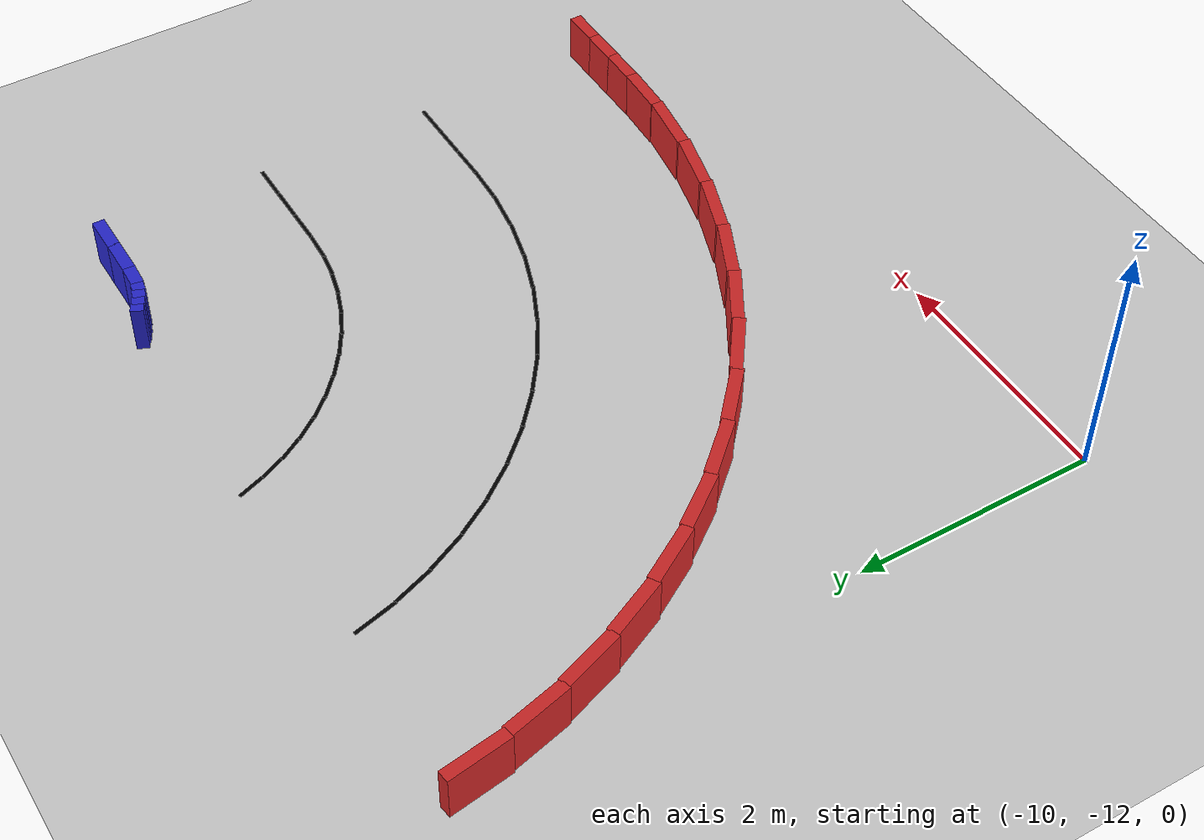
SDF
<sdf version="1.6">
 <world name="3lane_track">
  <include><uri>model://ground_plane</uri></include>
  <include><uri>model://sun</uri></include>
  <model name="iw_31">
   <static>true</static>
   <pose>-5.4211 -6.6325 0.200 0 0 -0.4418</pose>
   <link name="l">
    <collision name="c"><geometry><box><size>0.0847 0.1 0.4</size></box></geometry></collision>
    <visual name="v">
     <geometry><box><size>0.0847 0.1 0.4</size></box></geometry>
     <material><ambient>0.15 0.15 0.8 1</ambient><diffuse>0.15 0.15 0.8 1</diffuse></material>
    </visual>
   </link>
  </model>
  <model name="iw_32">
   <static>true</static>
   <pose>-5.3571 -6.6707 0.200 0 0 -0.3436</pose>
   <link name="l">
    <collision name="c"><geometry><box><size>0.0847 0.1 0.4</size></box></geometry></collision>
    <visual name="v">
     <geometry><box><size>0.0847 0.1 0.4</size></box></geometry>
     <material><ambient>0.15 0.15 0.8 1</ambient><diffuse>0.15 0.15 0.8 1</diffuse></material>
    </visual>
   </link>
  </model>
  <model name="iw_33">
   <static>true</static>
   <pose>-5.2896 -6.7025 0.200 0 0 -0.2454</pose>
   <link name="l">
    <collision name="c"><geometry><box><size>0.0847 0.1 0.4</size></box></geometry></collision>
    <visual name="v">
     <geometry><box><size>0.0847 0.1 0.4</size></box></geometry>
     <material><ambient>0.15 0.15 0.8 1</ambient><diffuse>0.15 0.15 0.8 1</diffuse></material>
    </visual>
   </link>
  </model>
  <model name="iw_34">
   <static>true</static>
   <pose>-5.2194 -6.7275 0.200 0 0 -0.1473</pose>
   <link name="l">
    <collision name="c"><geometry><box><size>0.0847 0.1 0.4</size></box></geometry></collision>
    <visual name="v">
     <geometry><box><size>0.0847 0.1 0.4</size></box></geometry>
     <material><ambient>0.15 0.15 0.8 1</ambient><diffuse>0.15 0.15 0.8 1</diffuse></material>
    </visual>
   </link>
  </model>
  <model name="iw_35">
   <static>true</static>
   <pose>-5.0918 -6.7441 0.200 0 0 -0.0491</pose>
   <link name="l">
    <collision name="c"><geometry><box><size>0.1940 0.1 0.4</size></box></geometry></collision>
    <visual name="v">
     <geometry><box><size>0.1940 0.1 0.4</size></box></geometry>
     <material><ambient>0.15 0.15 0.8 1</ambient><diffuse>0.15 0.15 0.8 1</diffuse></material>
    </visual>
   </link>
  </model>
  <model name="iw_36">
   <static>true</static>
   <pose>-4.8500 -6.7500 0.200 0 0 0.0000</pose>
   <link name="l">
    <collision name="c"><geometry><box><size>0.3100 0.1 0.4</size></box></geometry></collision>
    <visual name="v">
     <geometry><box><size>0.3100 0.1 0.4</size></box></geometry>
     <material><ambient>0.15 0.15 0.8 1</ambient><diffuse>0.15 0.15 0.8 1</diffuse></material>
    </visual>
   </link>
  </model>
  <model name="iw_37">
   <static>true</static>
   <pose>-4.5500 -6.7500 0.200 0 0 0.0000</pose>
   <link name="l">
    <collision name="c"><geometry><box><size>0.3100 0.1 0.4</size></box></geometry></collision>
    <visual name="v">
     <geometry><box><size>0.3100 0.1 0.4</size></box></geometry>
     <material><ambient>0.15 0.15 0.8 1</ambient><diffuse>0.15 0.15 0.8 1</diffuse></material>
    </visual>
   </link>
  </model>
  <model name="ow_21">
   <static>true</static>
   <pose>-10.1681 -6.8781 0.200 0 0 -1.4235</pose>
   <link name="l">
    <collision name="c"><geometry><box><size>0.5251 0.1 0.4</size></box></geometry></collision>
    <visual name="v">
     <geometry><box><size>0.5251 0.1 0.4</size></box></geometry>
     <material><ambient>0.8 0.15 0.15 1</ambient><diffuse>0.8 0.15 0.15 1</diffuse></material>
    </visual>
   </link>
  </model>
  <model name="ow_22">
   <static>true</static>
   <pose>-10.0571 -7.3804 0.200 0 0 -1.3254</pose>
   <link name="l">
    <collision name="c"><geometry><box><size>0.5251 0.1 0.4</size></box></geometry></collision>
    <visual name="v">
     <geometry><box><size>0.5251 0.1 0.4</size></box></geometry>
     <material><ambient>0.8 0.15 0.15 1</ambient><diffuse>0.8 0.15 0.15 1</diffuse></material>
    </visual>
   </link>
  </model>
  <model name="ow_23">
   <static>true</static>
   <pose>-9.8975 -7.8695 0.200 0 0 -1.2272</pose>
   <link name="l">
    <collision name="c"><geometry><box><size>0.5251 0.1 0.4</size></box></geometry></collision>
    <visual name="v">
     <geometry><box><size>0.5251 0.1 0.4</size></box></geometry>
     <material><ambient>0.8 0.15 0.15 1</ambient><diffuse>0.8 0.15 0.15 1</diffuse></material>
    </visual>
   </link>
  </model>
  <model name="ow_24">
   <static>true</static>
   <pose>-9.6906 -8.3405 0.200 0 0 -1.1290</pose>
   <link name="l">
    <collision name="c"><geometry><box><size>0.5251 0.1 0.4</size></box></geometry></collision>
    <visual name="v">
     <geometry><box><size>0.5251 0.1 0.4</size></box></geometry>
     <material><ambient>0.8 0.15 0.15 1</ambient><diffuse>0.8 0.15 0.15 1</diffuse></material>
    </visual>
   </link>
  </model>
  <model name="ow_25">
   <static>true</static>
   <pose>-9.4386 -8.7890 0.200 0 0 -1.0308</pose>
   <link name="l">
    <collision name="c"><geometry><box><size>0.5251 0.1 0.4</size></box></geometry></collision>
    <visual name="v">
     <geometry><box><size>0.5251 0.1 0.4</size></box></geometry>
     <material><ambient>0.8 0.15 0.15 1</ambient><diffuse>0.8 0.15 0.15 1</diffuse></material>
    </visual>
   </link>
  </model>
  <model name="ow_26">
   <static>true</static>
   <pose>-9.1439 -9.2106 0.200 0 0 -0.9327</pose>
   <link name="l">
    <collision name="c"><geometry><box><size>0.5251 0.1 0.4</size></box></geometry></collision>
    <visual name="v">
     <geometry><box><size>0.5251 0.1 0.4</size></box></geometry>
     <material><ambient>0.8 0.15 0.15 1</ambient><diffuse>0.8 0.15 0.15 1</diffuse></material>
    </visual>
   </link>
  </model>
  <model name="ow_27">
   <static>true</static>
   <pose>-8.8092 -9.6013 0.200 0 0 -0.8345</pose>
   <link name="l">
    <collision name="c"><geometry><box><size>0.5251 0.1 0.4</size></box></geometry></collision>
    <visual name="v">
     <geometry><box><size>0.5251 0.1 0.4</size></box></geometry>
     <material><ambient>0.8 0.15 0.15 1</ambient><diffuse>0.8 0.15 0.15 1</diffuse></material>
    </visual>
   </link>
  </model>
  <model name="ow_28">
   <static>true</static>
   <pose>-8.4379 -9.9574 0.200 0 0 -0.7363</pose>
   <link name="l">
    <collision name="c"><geometry><box><size>0.5251 0.1 0.4</size></box></geometry></collision>
    <visual name="v">
     <geometry><box><size>0.5251 0.1 0.4</size></box></geometry>
     <material><ambient>0.8 0.15 0.15 1</ambient><diffuse>0.8 0.15 0.15 1</diffuse></material>
    </visual>
   </link>
  </model>
  <model name="ow_29">
   <static>true</static>
   <pose>-8.0335 -10.2753 0.200 0 0 -0.6381</pose>
   <link name="l">
    <collision name="c"><geometry><box><size>0.5251 0.1 0.4</size></box></geometry></collision>
    <visual name="v">
     <geometry><box><size>0.5251 0.1 0.4</size></box></geometry>
     <material><ambient>0.8 0.15 0.15 1</ambient><diffuse>0.8 0.15 0.15 1</diffuse></material>
    </visual>
   </link>
  </model>
  <model name="ow_30">
   <static>true</static>
   <pose>-7.5998 -10.5520 0.200 0 0 -0.5400</pose>
   <link name="l">
    <collision name="c"><geometry><box><size>0.5251 0.1 0.4</size></box></geometry></collision>
    <visual name="v">
     <geometry><box><size>0.5251 0.1 0.4</size></box></geometry>
     <material><ambient>0.8 0.15 0.15 1</ambient><diffuse>0.8 0.15 0.15 1</diffuse></material>
    </visual>
   </link>
  </model>
  <model name="ow_31">
   <static>true</static>
   <pose>-7.1411 -10.7849 0.200 0 0 -0.4418</pose>
   <link name="l">
    <collision name="c"><geometry><box><size>0.5251 0.1 0.4</size></box></geometry></collision>
    <visual name="v">
     <geometry><box><size>0.5251 0.1 0.4</size></box></geometry>
     <material><ambient>0.8 0.15 0.15 1</ambient><diffuse>0.8 0.15 0.15 1</diffuse></material>
    </visual>
   </link>
  </model>
  <model name="ow_32">
   <static>true</static>
   <pose>-6.6618 -10.9718 0.200 0 0 -0.3436</pose>
   <link name="l">
    <collision name="c"><geometry><box><size>0.5251 0.1 0.4</size></box></geometry></collision>
    <visual name="v">
     <geometry><box><size>0.5251 0.1 0.4</size></box></geometry>
     <material><ambient>0.8 0.15 0.15 1</ambient><diffuse>0.8 0.15 0.15 1</diffuse></material>
    </visual>
   </link>
  </model>
  <model name="ow_33">
   <static>true</static>
   <pose>-6.1665 -11.1107 0.200 0 0 -0.2454</pose>
   <link name="l">
    <collision name="c"><geometry><box><size>0.5251 0.1 0.4</size></box></geometry></collision>
    <visual name="v">
     <geometry><box><size>0.5251 0.1 0.4</size></box></geometry>
     <material><ambient>0.8 0.15 0.15 1</ambient><diffuse>0.8 0.15 0.15 1</diffuse></material>
    </visual>
   </link>
  </model>
  <model name="ow_34">
   <static>true</static>
   <pose>-5.6599 -11.2004 0.200 0 0 -0.1473</pose>
   <link name="l">
    <collision name="c"><geometry><box><size>0.5251 0.1 0.4</size></box></geometry></collision>
    <visual name="v">
     <geometry><box><size>0.5251 0.1 0.4</size></box></geometry>
     <material><ambient>0.8 0.15 0.15 1</ambient><diffuse>0.8 0.15 0.15 1</diffuse></material>
    </visual>
   </link>
  </model>
  <model name="ow_35">
   <static>true</static>
   <pose>-5.2022 -11.2414 0.200 0 0 -0.0491</pose>
   <link name="l">
    <collision name="c"><geometry><box><size>0.4148 0.1 0.4</size></box></geometry></collision>
    <visual name="v">
     <geometry><box><size>0.4148 0.1 0.4</size></box></geometry>
     <material><ambient>0.8 0.15 0.15 1</ambient><diffuse>0.8 0.15 0.15 1</diffuse></material>
    </visual>
   </link>
  </model>
  <model name="ow_36">
   <static>true</static>
   <pose>-4.8500 -11.2500 0.200 0 0 0.0000</pose>
   <link name="l">
    <collision name="c"><geometry><box><size>0.3100 0.1 0.4</size></box></geometry></collision>
    <visual name="v">
     <geometry><box><size>0.3100 0.1 0.4</size></box></geometry>
     <material><ambient>0.8 0.15 0.15 1</ambient><diffuse>0.8 0.15 0.15 1</diffuse></material>
    </visual>
   </link>
  </model>
  <model name="ow_37">
   <static>true</static>
   <pose>-4.5500 -11.2500 0.200 0 0 0.0000</pose>
   <link name="l">
    <collision name="c"><geometry><box><size>0.3100 0.1 0.4</size></box></geometry></collision>
    <visual name="v">
     <geometry><box><size>0.3100 0.1 0.4</size></box></geometry>
     <material><ambient>0.8 0.15 0.15 1</ambient><diffuse>0.8 0.15 0.15 1</diffuse></material>
    </visual>
   </link>
  </model>
  <model name="ow_38">
   <static>true</static>
   <pose>-4.2500 -11.2500 0.200 0 0 0.0000</pose>
   <link name="l">
    <collision name="c"><geometry><box><size>0.3100 0.1 0.4</size></box></geometry></collision>
    <visual name="v">
     <geometry><box><size>0.3100 0.1 0.4</size></box></geometry>
     <material><ambient>0.8 0.15 0.15 1</ambient><diffuse>0.8 0.15 0.15 1</diffuse></material>
    </visual>
   </link>
  </model>
  <model name="line_45">
   <static>true</static>
   <pose>-8.6234 -6.9455 0.002 0 0 -1.3254</pose>
   <link name="l">
    <visual name="v">
     <geometry><box><size>0.3779 0.03 0.002</size></box></geometry>
     <material><ambient>0 0 0 1</ambient><diffuse>0 0 0 1</diffuse></material>
    </visual>
   </link>
  </model>
  <model name="line_46">
   <static>true</static>
   <pose>-7.1292 -6.7228 0.002 0 0 -1.2272</pose>
   <link name="l">
    <visual name="v">
     <geometry><box><size>0.2309 0.03 0.002</size></box></geometry>
     <material><ambient>0 0 0 1</ambient><diffuse>0 0 0 1</diffuse></material>
    </visual>
   </link>
  </model>
  <model name="line_47">
   <static>true</static>
   <pose>-8.5133 -7.2961 0.002 0 0 -1.2272</pose>
   <link name="l">
    <visual name="v">
     <geometry><box><size>0.3779 0.03 0.002</size></box></geometry>
     <material><ambient>0 0 0 1</ambient><diffuse>0 0 0 1</diffuse></material>
    </visual>
   </link>
  </model>
  <model name="line_48">
   <static>true</static>
   <pose>-7.0481 -6.9280 0.002 0 0 -1.1290</pose>
   <link name="l">
    <visual name="v">
     <geometry><box><size>0.2309 0.03 0.002</size></box></geometry>
     <material><ambient>0 0 0 1</ambient><diffuse>0 0 0 1</diffuse></material>
    </visual>
   </link>
  </model>
  <model name="line_49">
   <static>true</static>
   <pose>-8.3693 -7.6342 0.002 0 0 -1.1290</pose>
   <link name="l">
    <visual name="v">
     <geometry><box><size>0.3779 0.03 0.002</size></box></geometry>
     <material><ambient>0 0 0 1</ambient><diffuse>0 0 0 1</diffuse></material>
    </visual>
   </link>
  </model>
  <model name="line_50">
   <static>true</static>
   <pose>-6.9472 -7.1243 0.002 0 0 -1.0308</pose>
   <link name="l">
    <visual name="v">
     <geometry><box><size>0.2309 0.03 0.002</size></box></geometry>
     <material><ambient>0 0 0 1</ambient><diffuse>0 0 0 1</diffuse></material>
    </visual>
   </link>
  </model>
  <model name="line_51">
   <static>true</static>
   <pose>-8.1929 -7.9566 0.002 0 0 -1.0308</pose>
   <link name="l">
    <visual name="v">
     <geometry><box><size>0.3779 0.03 0.002</size></box></geometry>
     <material><ambient>0 0 0 1</ambient><diffuse>0 0 0 1</diffuse></material>
    </visual>
   </link>
  </model>
  <model name="line_52">
   <static>true</static>
   <pose>-6.8277 -7.3097 0.002 0 0 -0.9327</pose>
   <link name="l">
    <visual name="v">
     <geometry><box><size>0.2309 0.03 0.002</size></box></geometry>
     <material><ambient>0 0 0 1</ambient><diffuse>0 0 0 1</diffuse></material>
    </visual>
   </link>
  </model>
  <model name="line_53">
   <static>true</static>
   <pose>-7.9858 -8.2602 0.002 0 0 -0.9327</pose>
   <link name="l">
    <visual name="v">
     <geometry><box><size>0.3779 0.03 0.002</size></box></geometry>
     <material><ambient>0 0 0 1</ambient><diffuse>0 0 0 1</diffuse></material>
    </visual>
   </link>
  </model>
  <model name="line_54">
   <static>true</static>
   <pose>-6.6905 -7.4826 0.002 0 0 -0.8345</pose>
   <link name="l">
    <visual name="v">
     <geometry><box><size>0.2309 0.03 0.002</size></box></geometry>
     <material><ambient>0 0 0 1</ambient><diffuse>0 0 0 1</diffuse></material>
    </visual>
   </link>
  </model>
  <model name="line_55">
   <static>true</static>
   <pose>-7.7499 -8.5419 0.002 0 0 -0.8345</pose>
   <link name="l">
    <visual name="v">
     <geometry><box><size>0.3779 0.03 0.002</size></box></geometry>
     <material><ambient>0 0 0 1</ambient><diffuse>0 0 0 1</diffuse></material>
    </visual>
   </link>
  </model>
  <model name="line_56">
   <static>true</static>
   <pose>-6.5370 -7.6411 0.002 0 0 -0.7363</pose>
   <link name="l">
    <visual name="v">
     <geometry><box><size>0.2309 0.03 0.002</size></box></geometry>
     <material><ambient>0 0 0 1</ambient><diffuse>0 0 0 1</diffuse></material>
    </visual>
   </link>
  </model>
  <model name="line_57">
   <static>true</static>
   <pose>-7.4875 -8.7992 0.002 0 0 -0.7363</pose>
   <link name="l">
    <visual name="v">
     <geometry><box><size>0.3779 0.03 0.002</size></box></geometry>
     <material><ambient>0 0 0 1</ambient><diffuse>0 0 0 1</diffuse></material>
    </visual>
   </link>
  </model>
  <model name="line_58">
   <static>true</static>
   <pose>-6.3688 -7.7839 0.002 0 0 -0.6381</pose>
   <link name="l">
    <visual name="v">
     <geometry><box><size>0.2309 0.03 0.002</size></box></geometry>
     <material><ambient>0 0 0 1</ambient><diffuse>0 0 0 1</diffuse></material>
    </visual>
   </link>
  </model>
  <model name="line_59">
   <static>true</static>
   <pose>-7.2011 -9.0296 0.002 0 0 -0.6381</pose>
   <link name="l">
    <visual name="v">
     <geometry><box><size>0.3779 0.03 0.002</size></box></geometry>
     <material><ambient>0 0 0 1</ambient><diffuse>0 0 0 1</diffuse></material>
    </visual>
   </link>
  </model>
  <model name="line_60">
   <static>true</static>
   <pose>-6.1873 -7.9094 0.002 0 0 -0.5400</pose>
   <link name="l">
    <visual name="v">
     <geometry><box><size>0.2309 0.03 0.002</size></box></geometry>
     <material><ambient>0 0 0 1</ambient><diffuse>0 0 0 1</diffuse></material>
    </visual>
   </link>
  </model>
  <model name="line_61">
   <static>true</static>
   <pose>-6.8936 -9.2307 0.002 0 0 -0.5400</pose>
   <link name="l">
    <visual name="v">
     <geometry><box><size>0.3779 0.03 0.002</size></box></geometry>
     <material><ambient>0 0 0 1</ambient><diffuse>0 0 0 1</diffuse></material>
    </visual>
   </link>
  </model>
  <model name="line_62">
   <static>true</static>
   <pose>-5.9945 -8.0166 0.002 0 0 -0.4418</pose>
   <link name="l">
    <visual name="v">
     <geometry><box><size>0.2309 0.03 0.002</size></box></geometry>
     <material><ambient>0 0 0 1</ambient><diffuse>0 0 0 1</diffuse></material>
    </visual>
   </link>
  </model>
  <model name="line_63">
   <static>true</static>
   <pose>-6.5678 -9.4008 0.002 0 0 -0.4418</pose>
   <link name="l">
    <visual name="v">
     <geometry><box><size>0.3779 0.03 0.002</size></box></geometry>
     <material><ambient>0 0 0 1</ambient><diffuse>0 0 0 1</diffuse></material>
    </visual>
   </link>
  </model>
  <model name="line_64">
   <static>true</static>
   <pose>-5.7920 -8.1044 0.002 0 0 -0.3436</pose>
   <link name="l">
    <visual name="v">
     <geometry><box><size>0.2309 0.03 0.002</size></box></geometry>
     <material><ambient>0 0 0 1</ambient><diffuse>0 0 0 1</diffuse></material>
    </visual>
   </link>
  </model>
  <model name="line_65">
   <static>true</static>
   <pose>-6.2269 -9.5381 0.002 0 0 -0.3436</pose>
   <link name="l">
    <visual name="v">
     <geometry><box><size>0.3779 0.03 0.002</size></box></geometry>
     <material><ambient>0 0 0 1</ambient><diffuse>0 0 0 1</diffuse></material>
    </visual>
   </link>
  </model>
  <model name="line_66">
   <static>true</static>
   <pose>-5.5819 -8.1719 0.002 0 0 -0.2454</pose>
   <link name="l">
    <visual name="v">
     <geometry><box><size>0.2309 0.03 0.002</size></box></geometry>
     <material><ambient>0 0 0 1</ambient><diffuse>0 0 0 1</diffuse></material>
    </visual>
   </link>
  </model>
  <model name="line_67">
   <static>true</static>
   <pose>-5.8742 -9.6413 0.002 0 0 -0.2454</pose>
   <link name="l">
    <visual name="v">
     <geometry><box><size>0.3779 0.03 0.002</size></box></geometry>
     <material><ambient>0 0 0 1</ambient><diffuse>0 0 0 1</diffuse></material>
    </visual>
   </link>
  </model>
  <model name="line_68">
   <static>true</static>
   <pose>-5.3662 -8.2185 0.002 0 0 -0.1473</pose>
   <link name="l">
    <visual name="v">
     <geometry><box><size>0.2309 0.03 0.002</size></box></geometry>
     <material><ambient>0 0 0 1</ambient><diffuse>0 0 0 1</diffuse></material>
    </visual>
   </link>
  </model>
  <model name="line_69">
   <static>true</static>
   <pose>-5.5131 -9.7094 0.002 0 0 -0.1473</pose>
   <link name="l">
    <visual name="v">
     <geometry><box><size>0.3779 0.03 0.002</size></box></geometry>
     <material><ambient>0 0 0 1</ambient><diffuse>0 0 0 1</diffuse></material>
    </visual>
   </link>
  </model>
  <model name="line_70">
   <static>true</static>
   <pose>-5.1286 -8.2432 0.002 0 0 -0.0491</pose>
   <link name="l">
    <visual name="v">
     <geometry><box><size>0.2676 0.03 0.002</size></box></geometry>
     <material><ambient>0 0 0 1</ambient><diffuse>0 0 0 1</diffuse></material>
    </visual>
   </link>
  </model>
  <model name="line_71">
   <static>true</static>
   <pose>-5.1654 -9.7423 0.002 0 0 -0.0491</pose>
   <link name="l">
    <visual name="v">
     <geometry><box><size>0.3412 0.03 0.002</size></box></geometry>
     <material><ambient>0 0 0 1</ambient><diffuse>0 0 0 1</diffuse></material>
    </visual>
   </link>
  </model>
  <model name="line_72">
   <static>true</static>
   <pose>-4.8500 -8.2500 0.002 0 0 0.0000</pose>
   <link name="l">
    <visual name="v">
     <geometry><box><size>0.3100 0.03 0.002</size></box></geometry>
     <material><ambient>0 0 0 1</ambient><diffuse>0 0 0 1</diffuse></material>
    </visual>
   </link>
  </model>
  <model name="line_73">
   <static>true</static>
   <pose>-4.8500 -9.7500 0.002 0 0 0.0000</pose>
   <link name="l">
    <visual name="v">
     <geometry><box><size>0.3100 0.03 0.002</size></box></geometry>
     <material><ambient>0 0 0 1</ambient><diffuse>0 0 0 1</diffuse></material>
    </visual>
   </link>
  </model>
  <model name="line_74">
   <static>true</static>
   <pose>-4.5500 -8.2500 0.002 0 0 0.0000</pose>
   <link name="l">
    <visual name="v">
     <geometry><box><size>0.3100 0.03 0.002</size></box></geometry>
     <material><ambient>0 0 0 1</ambient><diffuse>0 0 0 1</diffuse></material>
    </visual>
   </link>
  </model>
  <model name="line_75">
   <static>true</static>
   <pose>-4.5500 -9.7500 0.002 0 0 0.0000</pose>
   <link name="l">
    <visual name="v">
     <geometry><box><size>0.3100 0.03 0.002</size></box></geometry>
     <material><ambient>0 0 0 1</ambient><diffuse>0 0 0 1</diffuse></material>
    </visual>
   </link>
  </model>
  <model name="line_76">
   <static>true</static>
   <pose>-4.2500 -8.2500 0.002 0 0 0.0000</pose>
   <link name="l">
    <visual name="v">
     <geometry><box><size>0.3100 0.03 0.002</size></box></geometry>
     <material><ambient>0 0 0 1</ambient><diffuse>0 0 0 1</diffuse></material>
    </visual>
   </link>
  </model>
  <model name="line_77">
   <static>true</static>
   <pose>-4.2500 -9.7500 0.002 0 0 0.0000</pose>
   <link name="l">
    <visual name="v">
     <geometry><box><size>0.3100 0.03 0.002</size></box></geometry>
     <material><ambient>0 0 0 1</ambient><diffuse>0 0 0 1</diffuse></material>
    </visual>
   </link>
  </model>
 </world>
</sdf>
